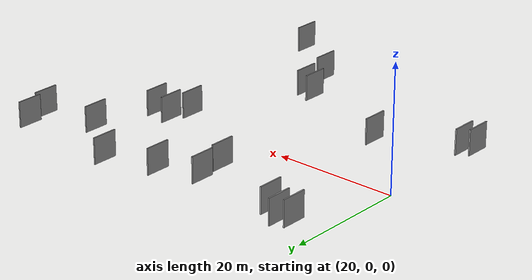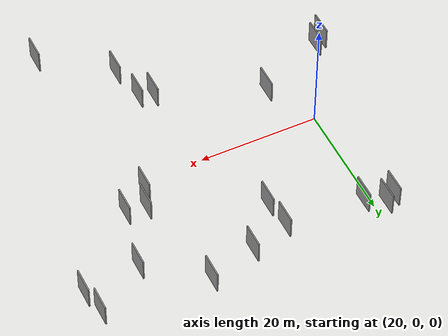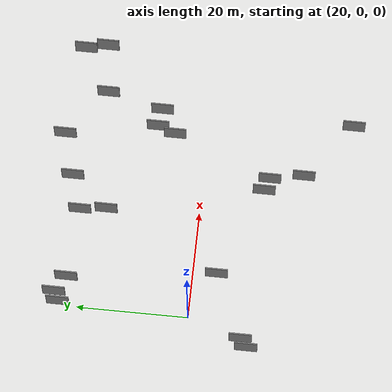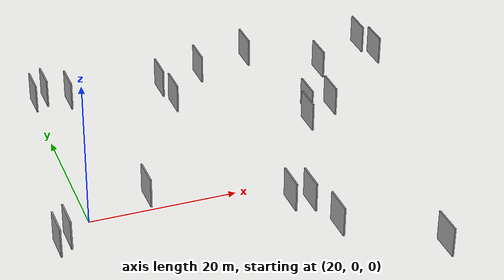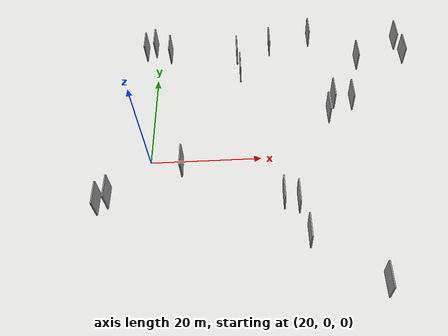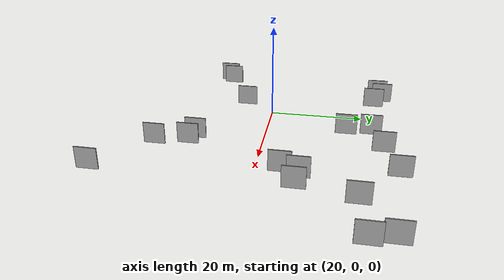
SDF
<sdf version="1.6">
 <world name="default">
  <scene>
   <sky><clouds><speed>12</speed></clouds></sky>
   <ambient>0.4 0.4 0.4 1</ambient>
   <background>0.7 0.7 0.7 1</background>
   <shadows>1</shadows>
  </scene>
  <gravity>0 0 -9.8066</gravity>
  <magnetic_field>6e-06 2.3e-05 -4.2e-05</magnetic_field>
  <physics default="0" name="default_physics" type="ode">
   <ode>
    <solver>
     <type>quick</type>
     <iters>10</iters>
     <sor>1.0</sor>
     <use_dynamic_moi_rescaling>0</use_dynamic_moi_rescaling>
    </solver>
    <constraints>
     <cfm>0</cfm>
     <erp>0.2</erp>
     <contact_max_correcting_vel>100</contact_max_correcting_vel>
     <contact_surface_layer>0.001</contact_surface_layer>
    </constraints>
   </ode>
   <max_step_size>0.004</max_step_size>
   <real_time_factor>1</real_time_factor>
   <real_time_update_rate>250</real_time_update_rate>
  </physics>
  <light name="sun" type="directional">
   <pose>0 0 10 0 0 0</pose>
   <diffuse>0.8 0.8 0.8 1</diffuse>
   <specular>0.2 0.2 0.2 1</specular>
   <attenuation>
    <range>1000</range>
    <constant>0.9</constant>
    <linear>0.01</linear>
    <quadratic>0.001</quadratic>
   </attenuation>
   <direction>-0.5 0.1 -0.9</direction>
  </light>
  <model name="grey_wall_1">
   <static>1</static>
   <pose>26.5306 -4.4248 5.0 0.000000 0.000000 1.570796</pose>
   <link name="link">
    <pose>0 0 2.00 0 0 0</pose>
    <collision name="collision"><geometry><box><size>4.00 0.2 4.00</size></box></geometry></collision>
    <visual name="visual">
     <cast_shadows>0</cast_shadows>
     <geometry><box><size>4.00 0.2 4.00</size></box></geometry>
     <material>
      <script>
       <uri>model://grey_wall/materials/scripts</uri>
       <uri>model://grey_wall/materials/textures</uri>
       <name>vrc/grey_wall</name>
      </script>
     </material>
    </visual>
   </link>
  </model>
  <model name="grey_wall_2">
   <static>1</static>
   <pose>57.0450 -26.2859 5.0 0.000000 0.000000 1.570796</pose>
   <link name="link">
    <pose>0 0 2.00 0 0 0</pose>
    <collision name="collision"><geometry><box><size>4.00 0.2 4.00</size></box></geometry></collision>
    <visual name="visual">
     <cast_shadows>0</cast_shadows>
     <geometry><box><size>4.00 0.2 4.00</size></box></geometry>
     <material>
      <script>
       <uri>model://grey_wall/materials/scripts</uri>
       <uri>model://grey_wall/materials/textures</uri>
       <name>vrc/grey_wall</name>
      </script>
     </material>
    </visual>
   </link>
  </model>
  <model name="grey_wall_3">
   <static>1</static>
   <pose>18.6197 22.8474 5.0 0.000000 0.000000 1.570796</pose>
   <link name="link">
    <pose>0 0 2.00 0 0 0</pose>
    <collision name="collision"><geometry><box><size>4.00 0.2 4.00</size></box></geometry></collision>
    <visual name="visual">
     <cast_shadows>0</cast_shadows>
     <geometry><box><size>4.00 0.2 4.00</size></box></geometry>
     <material>
      <script>
       <uri>model://grey_wall/materials/scripts</uri>
       <uri>model://grey_wall/materials/textures</uri>
       <name>vrc/grey_wall</name>
      </script>
     </material>
    </visual>
   </link>
  </model>
  <model name="grey_wall_4">
   <static>1</static>
   <pose>59.3501 18.5660 5.0 0.000000 0.000000 1.570796</pose>
   <link name="link">
    <pose>0 0 2.00 0 0 0</pose>
    <collision name="collision"><geometry><box><size>4.00 0.2 4.00</size></box></geometry></collision>
    <visual name="visual">
     <cast_shadows>0</cast_shadows>
     <geometry><box><size>4.00 0.2 4.00</size></box></geometry>
     <material>
      <script>
       <uri>model://grey_wall/materials/scripts</uri>
       <uri>model://grey_wall/materials/textures</uri>
       <name>vrc/grey_wall</name>
      </script>
     </material>
    </visual>
   </link>
  </model>
  <model name="grey_wall_5">
   <static>1</static>
   <pose>13.4207 -10.8887 5.0 0.000000 0.000000 1.570796</pose>
   <link name="link">
    <pose>0 0 2.00 0 0 0</pose>
    <collision name="collision"><geometry><box><size>4.00 0.2 4.00</size></box></geometry></collision>
    <visual name="visual">
     <cast_shadows>0</cast_shadows>
     <geometry><box><size>4.00 0.2 4.00</size></box></geometry>
     <material>
      <script>
       <uri>model://grey_wall/materials/scripts</uri>
       <uri>model://grey_wall/materials/textures</uri>
       <name>vrc/grey_wall</name>
      </script>
     </material>
    </visual>
   </link>
  </model>
  <model name="grey_wall_6">
   <static>1</static>
   <pose>52.3927 5.6688 5.0 0.000000 0.000000 1.570796</pose>
   <link name="link">
    <pose>0 0 2.00 0 0 0</pose>
    <collision name="collision"><geometry><box><size>4.00 0.2 4.00</size></box></geometry></collision>
    <visual name="visual">
     <cast_shadows>0</cast_shadows>
     <geometry><box><size>4.00 0.2 4.00</size></box></geometry>
     <material>
      <script>
       <uri>model://grey_wall/materials/scripts</uri>
       <uri>model://grey_wall/materials/textures</uri>
       <name>vrc/grey_wall</name>
      </script>
     </material>
    </visual>
   </link>
  </model>
  <model name="grey_wall_7">
   <static>1</static>
   <pose>42.6199 23.0611 5.0 0.000000 0.000000 1.570796</pose>
   <link name="link">
    <pose>0 0 2.00 0 0 0</pose>
    <collision name="collision"><geometry><box><size>4.00 0.2 4.00</size></box></geometry></collision>
    <visual name="visual">
     <cast_shadows>0</cast_shadows>
     <geometry><box><size>4.00 0.2 4.00</size></box></geometry>
     <material>
      <script>
       <uri>model://grey_wall/materials/scripts</uri>
       <uri>model://grey_wall/materials/textures</uri>
       <name>vrc/grey_wall</name>
      </script>
     </material>
    </visual>
   </link>
  </model>
  <model name="grey_wall_8">
   <static>1</static>
   <pose>36.7980 16.3737 5.0 0.000000 0.000000 1.570796</pose>
   <link name="link">
    <pose>0 0 2.00 0 0 0</pose>
    <collision name="collision"><geometry><box><size>4.00 0.2 4.00</size></box></geometry></collision>
    <visual name="visual">
     <cast_shadows>0</cast_shadows>
     <geometry><box><size>4.00 0.2 4.00</size></box></geometry>
     <material>
      <script>
       <uri>model://grey_wall/materials/scripts</uri>
       <uri>model://grey_wall/materials/textures</uri>
       <name>vrc/grey_wall</name>
      </script>
     </material>
    </visual>
   </link>
  </model>
  <model name="grey_wall_9">
   <static>1</static>
   <pose>56.9147 8.4570 5.0 0.000000 0.000000 1.570796</pose>
   <link name="link">
    <pose>0 0 2.00 0 0 0</pose>
    <collision name="collision"><geometry><box><size>4.00 0.2 4.00</size></box></geometry></collision>
    <visual name="visual">
     <cast_shadows>0</cast_shadows>
     <geometry><box><size>4.00 0.2 4.00</size></box></geometry>
     <material>
      <script>
       <uri>model://grey_wall/materials/scripts</uri>
       <uri>model://grey_wall/materials/textures</uri>
       <name>vrc/grey_wall</name>
      </script>
     </material>
    </visual>
   </link>
  </model>
  <model name="grey_wall_10">
   <static>1</static>
   <pose>43.1356 -11.3131 5.0 0.000000 0.000000 1.570796</pose>
   <link name="link">
    <pose>0 0 2.00 0 0 0</pose>
    <collision name="collision"><geometry><box><size>4.00 0.2 4.00</size></box></geometry></collision>
    <visual name="visual">
     <cast_shadows>0</cast_shadows>
     <geometry><box><size>4.00 0.2 4.00</size></box></geometry>
     <material>
      <script>
       <uri>model://grey_wall/materials/scripts</uri>
       <uri>model://grey_wall/materials/textures</uri>
       <name>vrc/grey_wall</name>
      </script>
     </material>
    </visual>
   </link>
  </model>
  <model name="grey_wall_11">
   <static>1</static>
   <pose>67.7056 23.6533 5.0 0.000000 0.000000 1.570796</pose>
   <link name="link">
    <pose>0 0 2.00 0 0 0</pose>
    <collision name="collision"><geometry><box><size>4.00 0.2 4.00</size></box></geometry></collision>
    <visual name="visual">
     <cast_shadows>0</cast_shadows>
     <geometry><box><size>4.00 0.2 4.00</size></box></geometry>
     <material>
      <script>
       <uri>model://grey_wall/materials/scripts</uri>
       <uri>model://grey_wall/materials/textures</uri>
       <name>vrc/grey_wall</name>
      </script>
     </material>
    </visual>
   </link>
  </model>
  <model name="grey_wall_12">
   <static>1</static>
   <pose>46.5691 -18.1531 5.0 0.000000 0.000000 1.570796</pose>
   <link name="link">
    <pose>0 0 2.00 0 0 0</pose>
    <collision name="collision"><geometry><box><size>4.00 0.2 4.00</size></box></geometry></collision>
    <visual name="visual">
     <cast_shadows>0</cast_shadows>
     <geometry><box><size>4.00 0.2 4.00</size></box></geometry>
     <material>
      <script>
       <uri>model://grey_wall/materials/scripts</uri>
       <uri>model://grey_wall/materials/textures</uri>
       <name>vrc/grey_wall</name>
      </script>
     </material>
    </visual>
   </link>
  </model>
  <model name="grey_wall_13">
   <static>1</static>
   <pose>14.9827 -9.7836 5.0 0.000000 0.000000 1.570796</pose>
   <link name="link">
    <pose>0 0 2.00 0 0 0</pose>
    <collision name="collision"><geometry><box><size>4.00 0.2 4.00</size></box></geometry></collision>
    <visual name="visual">
     <cast_shadows>0</cast_shadows>
     <geometry><box><size>4.00 0.2 4.00</size></box></geometry>
     <material>
      <script>
       <uri>model://grey_wall/materials/scripts</uri>
       <uri>model://grey_wall/materials/textures</uri>
       <name>vrc/grey_wall</name>
      </script>
     </material>
    </visual>
   </link>
  </model>
  <model name="grey_wall_14">
   <static>1</static>
   <pose>45.4475 -12.1264 5.0 0.000000 0.000000 1.570796</pose>
   <link name="link">
    <pose>0 0 2.00 0 0 0</pose>
    <collision name="collision"><geometry><box><size>4.00 0.2 4.00</size></box></geometry></collision>
    <visual name="visual">
     <cast_shadows>0</cast_shadows>
     <geometry><box><size>4.00 0.2 4.00</size></box></geometry>
     <material>
      <script>
       <uri>model://grey_wall/materials/scripts</uri>
       <uri>model://grey_wall/materials/textures</uri>
       <name>vrc/grey_wall</name>
      </script>
     </material>
    </visual>
   </link>
  </model>
  <model name="grey_wall_15">
   <static>1</static>
   <pose>23.3274 21.9148 5.0 0.000000 0.000000 1.570796</pose>
   <link name="link">
    <pose>0 0 2.00 0 0 0</pose>
    <collision name="collision"><geometry><box><size>4.00 0.2 4.00</size></box></geometry></collision>
    <visual name="visual">
     <cast_shadows>0</cast_shadows>
     <geometry><box><size>4.00 0.2 4.00</size></box></geometry>
     <material>
      <script>
       <uri>model://grey_wall/materials/scripts</uri>
       <uri>model://grey_wall/materials/textures</uri>
       <name>vrc/grey_wall</name>
      </script>
     </material>
    </visual>
   </link>
  </model>
  <model name="grey_wall_16">
   <static>1</static>
   <pose>68.5829 19.7129 5.0 0.000000 0.000000 1.570796</pose>
   <link name="link">
    <pose>0 0 2.00 0 0 0</pose>
    <collision name="collision"><geometry><box><size>4.00 0.2 4.00</size></box></geometry></collision>
    <visual name="visual">
     <cast_shadows>0</cast_shadows>
     <geometry><box><size>4.00 0.2 4.00</size></box></geometry>
     <material>
      <script>
       <uri>model://grey_wall/materials/scripts</uri>
       <uri>model://grey_wall/materials/textures</uri>
       <name>vrc/grey_wall</name>
      </script>
     </material>
    </visual>
   </link>
  </model>
  <model name="grey_wall_17">
   <static>1</static>
   <pose>36.2360 21.0264 5.0 0.000000 0.000000 1.570796</pose>
   <link name="link">
    <pose>0 0 2.00 0 0 0</pose>
    <collision name="collision"><geometry><box><size>4.00 0.2 4.00</size></box></geometry></collision>
    <visual name="visual">
     <cast_shadows>0</cast_shadows>
     <geometry><box><size>4.00 0.2 4.00</size></box></geometry>
     <material>
      <script>
       <uri>model://grey_wall/materials/scripts</uri>
       <uri>model://grey_wall/materials/textures</uri>
       <name>vrc/grey_wall</name>
      </script>
     </material>
    </visual>
   </link>
  </model>
  <model name="grey_wall_18">
   <static>1</static>
   <pose>50.5441 25.3861 5.0 0.000000 0.000000 1.570796</pose>
   <link name="link">
    <pose>0 0 2.00 0 0 0</pose>
    <collision name="collision"><geometry><box><size>4.00 0.2 4.00</size></box></geometry></collision>
    <visual name="visual">
     <cast_shadows>0</cast_shadows>
     <geometry><box><size>4.00 0.2 4.00</size></box></geometry>
     <material>
      <script>
       <uri>model://grey_wall/materials/scripts</uri>
       <uri>model://grey_wall/materials/textures</uri>
       <name>vrc/grey_wall</name>
      </script>
     </material>
    </visual>
   </link>
  </model>
  <model name="grey_wall_19">
   <static>1</static>
   <pose>20.3528 23.7322 5.0 0.000000 0.000000 1.570796</pose>
   <link name="link">
    <pose>0 0 2.00 0 0 0</pose>
    <collision name="collision"><geometry><box><size>4.00 0.2 4.00</size></box></geometry></collision>
    <visual name="visual">
     <cast_shadows>0</cast_shadows>
     <geometry><box><size>4.00 0.2 4.00</size></box></geometry>
     <material>
      <script>
       <uri>model://grey_wall/materials/scripts</uri>
       <uri>model://grey_wall/materials/textures</uri>
       <name>vrc/grey_wall</name>
      </script>
     </material>
    </visual>
   </link>
  </model>
  <model name="grey_wall_20">
   <static>1</static>
   <pose>53.6226 8.9058 5.0 0.000000 0.000000 1.570796</pose>
   <link name="link">
    <pose>0 0 2.00 0 0 0</pose>
    <collision name="collision"><geometry><box><size>4.00 0.2 4.00</size></box></geometry></collision>
    <visual name="visual">
     <cast_shadows>0</cast_shadows>
     <geometry><box><size>4.00 0.2 4.00</size></box></geometry>
     <material>
      <script>
       <uri>model://grey_wall/materials/scripts</uri>
       <uri>model://grey_wall/materials/textures</uri>
       <name>vrc/grey_wall</name>
      </script>
     </material>
    </visual>
   </link>
  </model>
 </world>
</sdf>
